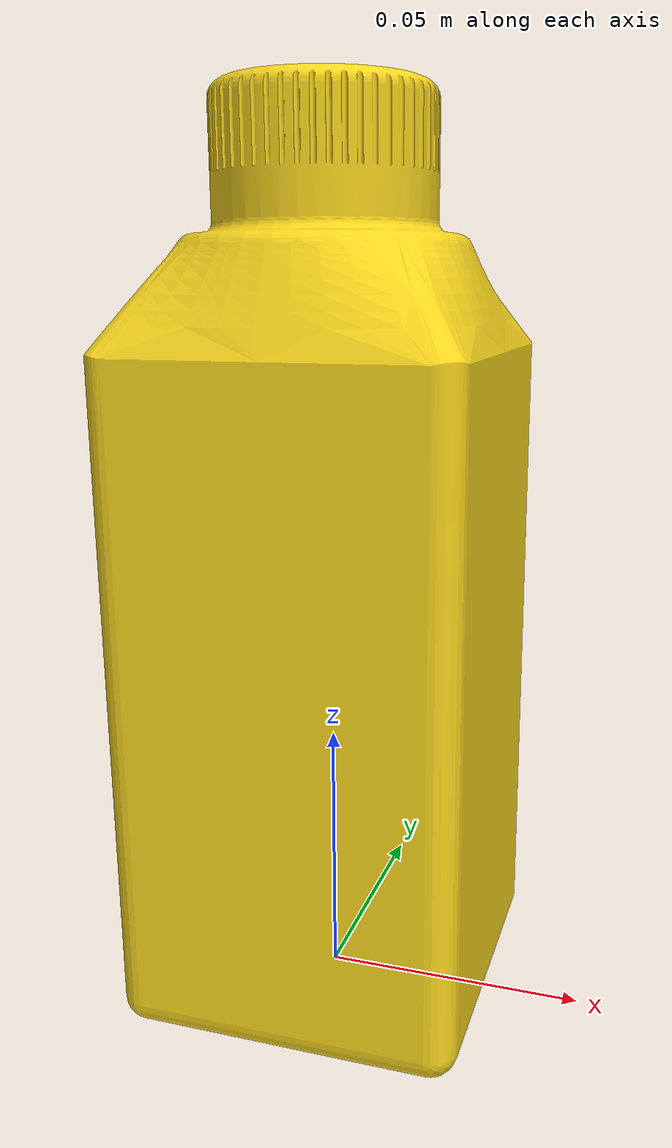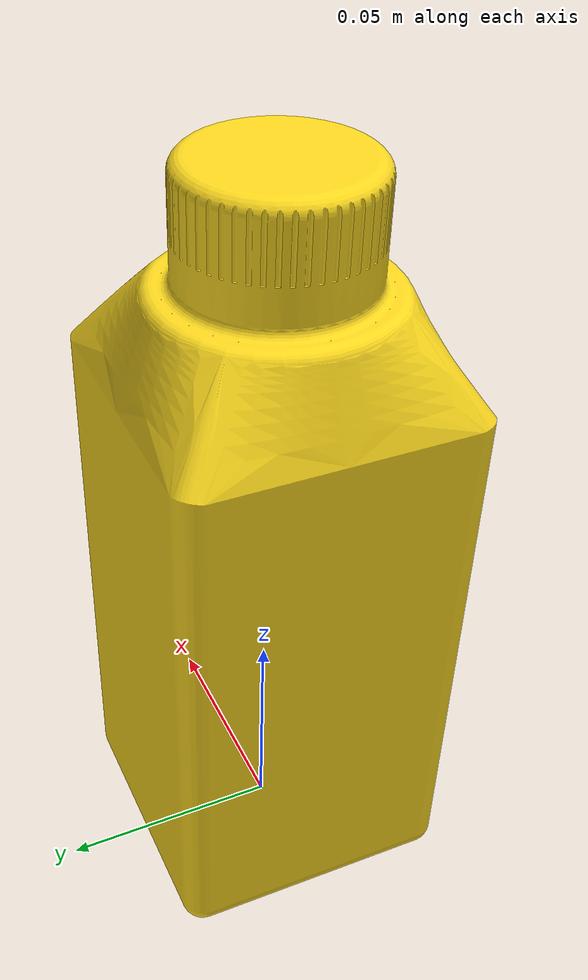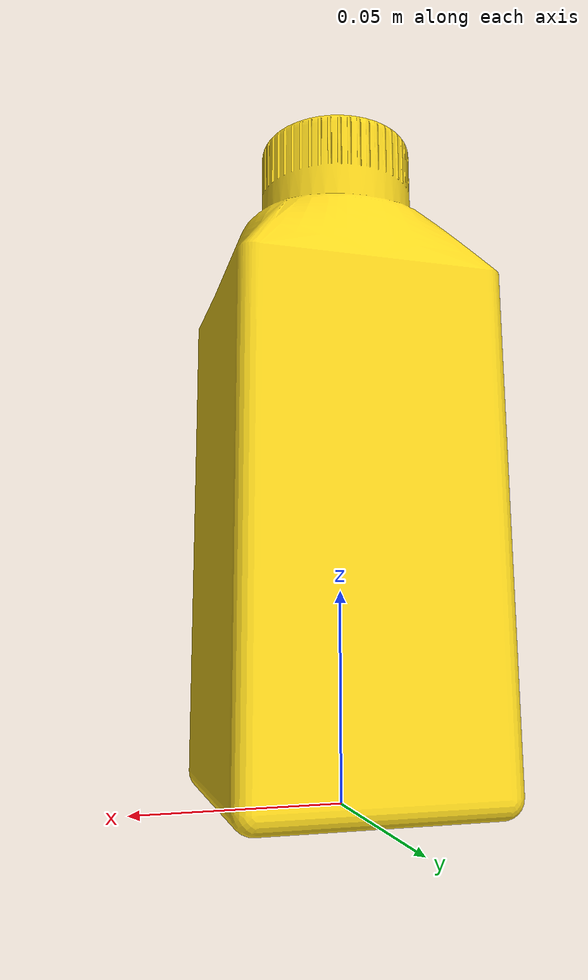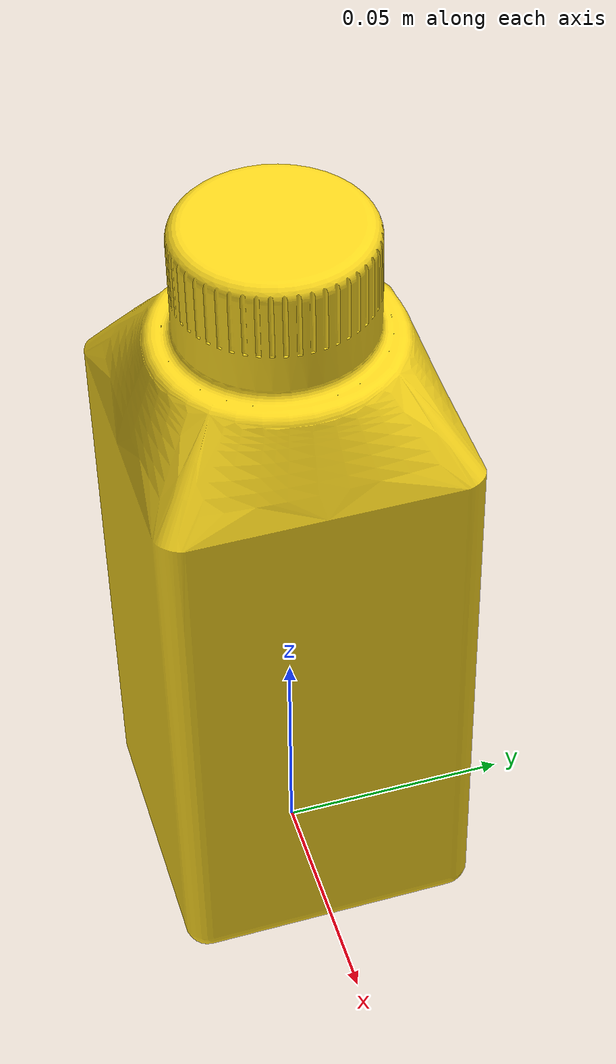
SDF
<?xml version="1.0"?>
<sdf version="1.6">
  <model name="robosub_bottle">
    <pose>0 0 0 0 0 0</pose>
    <static>false</static>
    <allow_auto_disable>false</allow_auto_disable>
    <self_collide>false</self_collide>

  <link name="robosub_bottle_link">
      <pose>0 0 0 0 0 0</pose>
      <inertial>
        <pose>0 0 0.0118 0 0 0</pose> <!-- CoM matched exactly to Center of Buoyancy (geometric center) to prevent tilting -->
        <mass>0.5</mass>
        <inertia>
          <ixx>0.05</ixx>
          <iyy>0.05</iyy>
          <izz>0.05</izz>
          <ixy>0</ixy>
          <ixz>0</ixz>
          <iyz>0</iyz>
        </inertia>
      </inertial>

      <!-- Stability settings for better grasping and horizontal fluid drag -->
      <velocity_decay>
        <linear>0.05</linear>
        <angular>0.8</angular>
      </velocity_decay>
  <collision name="robosub_bottle_col">
        <pose>0 0 0 0 0 0</pose>
        <geometry>
          <mesh>
            <uri>model://robosub_bottle/meshes/bottle_final1.dae</uri>
          </mesh>
        </geometry>
        <surface>
          <contact>
            <ode>
              <kp>3000000</kp>
              <kd>300</kd>
              <max_vel>0.3</max_vel>
              <min_depth>0.03</min_depth>
            </ode>
          </contact>
          <friction>
            <ode>
              <!-- Very high friction - perfect grip with gripper -->
              <mu>50.0</mu>
              <mu2>50.0</mu2>
              <slip1>0.0</slip1>
              <slip2>0.0</slip2>
            </ode>
          </friction>
          <bounce>
            <restitution_coefficient>0.2</restitution_coefficient>
          </bounce>
        </surface>
        <!-- Track more contact points -->
        <laser_retro>0.0</laser_retro>
        <max_contacts>200</max_contacts>
      </collision>
  <visual name="robosub_bottle_vis">
        <pose>0 0 0 0 0 0</pose>
        <geometry>
          <mesh>
            <uri>model://robosub_bottle/meshes/bottle_final1.dae</uri>
          </mesh>
        </geometry>
      </visual>
    </link>
  </model>
</sdf>
